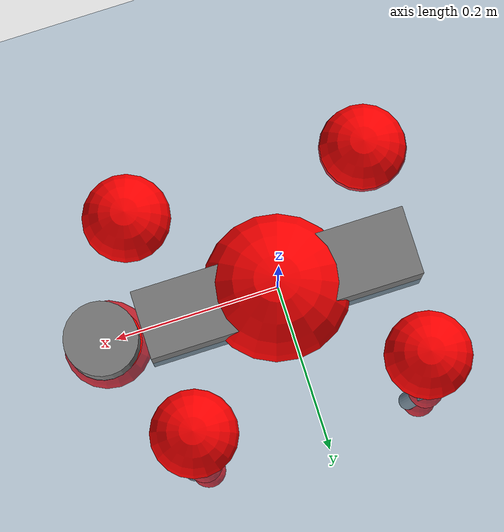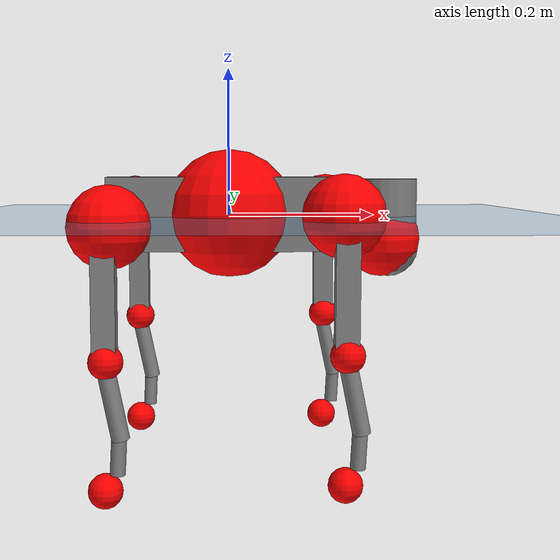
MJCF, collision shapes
<mujoco model="go2">
  <compiler angle="radian" assetdir="assets" balanceinertia="true" inertiafromgeom="false"/>

  <option timestep="0.005" density="1.2" viscosity="2e-05"/>

  <size nkey="1"/>

  <visual>
    <quality shadowsize="8192"/>
    <map shadowclip="0.5"/>
  </visual>

  <default>
    <default class="/">
      <geom contype="0" conaffinity="0" group="1" solref="-1000 -80"/>
      <site size="0.01 0.005 0.005" group="5"/>
      <general forcelimited="true" biastype="affine" gainprm="20" biasprm="0 -20 -0.5"/>
      <default class="go2">
        <joint armature="0.01" damping="0.01" frictionloss="0.2"/>
        <geom condim="1" margin="0.001"/>
        <default class="visual">
          <geom type="mesh" group="2"/>
        </default>
        <default class="collision">
          <geom group="3"/>
          <default class="foot">
            <geom size="0.022 0 0" condim="6" priority="1" friction="0.8 0.02 0.01" solimp="0.015 1 0.022"/>
          </default>
        </default>
        <default class="reward_collision_sphere">
          <geom group="5" rgba="1 0 0 1"/>
        </default>
      </default>
    </default>
  </default>

  <asset>
    <texture type="skybox" colorspace="auto" name="//unnamed_texture_0" builtin="gradient" rgb1="0.95 0.95 0.95" rgb2="0.95 0.95 0.95" width="100" height="600"/>
    <texture type="2d" colorspace="auto" name="texplane" builtin="checker" rgb1="0.345 0.575 0.748" rgb2="0.345 0.575 0.748" markrgb="1 1 1" width="512" height="512"/>
    <material name="MatPlane" class="/" texture="texplane" texuniform="true" texrepeat="2 2" specular="0.9"/>
    <material name="metal" class="/" rgba="0.9 0.95 0.95 1"/>
    <material name="black" class="/" rgba="0 0 0 1"/>
    <material name="white" class="/"/>
    <material name="gray" class="/" rgba="0.671705 0.692426 0.77427 1"/>
    <mesh name="base_0" class="/" file="base_0.obj"/>
    <mesh name="base_1" class="/" file="base_1.obj"/>
    <mesh name="base_2" class="/" file="base_2.obj"/>
    <mesh name="base_3" class="/" file="base_3.obj"/>
    <mesh name="base_4" class="/" file="base_4.obj"/>
    <mesh name="hip_0" class="/" file="hip_0.obj"/>
    <mesh name="hip_1" class="/" file="hip_1.obj"/>
    <mesh name="thigh_0" class="/" file="thigh_0.obj"/>
    <mesh name="thigh_1" class="/" file="thigh_1.obj"/>
    <mesh name="thigh_mirror_0" class="/" file="thigh_mirror_0.obj"/>
    <mesh name="thigh_mirror_1" class="/" file="thigh_mirror_1.obj"/>
    <mesh name="calf_0" class="/" file="calf_0.obj"/>
    <mesh name="calf_1" class="/" file="calf_1.obj"/>
    <mesh name="calf_mirror_0" class="/" file="calf_mirror_0.obj"/>
    <mesh name="calf_mirror_1" class="/" file="calf_mirror_1.obj"/>
    <mesh name="foot" class="/" file="foot.obj"/>
  </asset>

  <worldbody>
    <geom name="floor" class="/" size="100 100 0.125" type="plane" group="0" material="MatPlane"/>
    <light name="toplight_shadow" class="/" pos="0 0 5" dir="0.0990148 0.0990148 -0.990148" type="directional" ambient="0.04 0.04 0.04" diffuse="0.55 0.55 0.55" specular="0.12 0.12 0.12"/>
    <light name="toplight_fill" class="/" pos="0 0 5" dir="0.0990148 0.0990148 -0.990148" type="directional" castshadow="false" ambient="0.04 0.04 0.04" diffuse="0.3 0.3 0.3" specular="0.08 0.08 0.08"/>
    <body name="trunk" childclass="go2" pos="0.00122966 -0.00066146 0.00242085" quat="1 -0.000687576 -9.44278e-05 -0.000372397">
      <inertial pos="0.0171712 -0.000329399 -0.00402457" quat="-0.00119041 0.709922 -0.00561029 0.704257" mass="4.55678" diaginertia="0.0247568 0.168099 0.0062974"/>
      <joint name="//unnamed_joint_0" type="free" armature="0" damping="0" frictionloss="0"/>
      <geom name="//unnamed_geom_1" class="visual" material="black" mesh="base_0"/>
      <geom name="//unnamed_geom_2" class="visual" material="black" mesh="base_1"/>
      <geom name="//unnamed_geom_3" class="visual" material="black" mesh="base_2"/>
      <geom name="//unnamed_geom_4" class="visual" material="white" mesh="base_3"/>
      <geom name="//unnamed_geom_5" class="visual" material="gray" mesh="base_4"/>
      <geom name="trunk_1" class="collision" size="0.166246 0.0413184 0.0503776" type="box"/>
      <geom name="trunk_2" class="collision" size="0.0441908 0.0397718" pos="0.214878 0 0.00769038" type="cylinder"/>
      <geom name="trunk_3" class="collision" size="0.0415394" pos="0.22091 0 -0.0461423"/>
      <geom name="//unnamed_geom_9" class="reward_collision_sphere" size="0.0883817"/>
      <geom name="//unnamed_geom_10" class="reward_collision_sphere" size="0.053029" pos="0.211108 0 -0.0346067"/>
      <site name="imu" pos="-0.00900055 0.00913926 0.0311646" size="0.00883817"/>
      <camera name="track" pos="0 -2.25691 0" quat="0.707107 0.707107 0 0" mode="trackcom"/>
      <camera name="ego_camera" pos="0.235235 0 0.0346067" quat="-0.5 -0.5 0.5 0.5"/>
      <body name="FL_hip" pos="0.145082 0.0562018 0.000546191" quat="1 -0.000125393 0.000147227 0.000140713">
        <inertial pos="-0.00300391 0.00132406 0.00270067" quat="0.493146 0.500368 0.499697 0.506697" mass="0.454297" diaginertia="0.000212071 0.00102968 0.000126331"/>
        <joint name="FL_hip_joint" pos="0 0 0" axis="0.999945 -0.0105326 0.000112214" range="-1.04187 1.09087" armature="0.00877329" damping="0.00490915" frictionloss="0.195738"/>
        <geom name="//unnamed_geom_11" class="visual" material="metal" mesh="hip_0"/>
        <geom name="//unnamed_geom_12" class="visual" material="gray" mesh="hip_1"/>
        <geom name="//unnamed_geom_13" class="collision" size="0.0406556 0.0176763" pos="0 0.0902764 0" quat="0.707107 0.707107 0 0" type="cylinder"/>
        <geom name="//unnamed_geom_14" class="reward_collision_sphere" size="0.053029" pos="0 0.0789918 0"/>
        <body name="FL_thigh" pos="-0.00014805 0.110445 -0.00192722" quat="1 0.000350797 -0.00020703 0.000246029">
          <inertial pos="-0.00449521 -0.0256716 -0.0247396" quat="0.827063 0.0793583 -0.00904752 0.556405" mass="0.826004" diaginertia="0.00150199 0.0108005 0.000238416"/>
          <joint name="FL_thigh_joint" pos="0 0 0" axis="0.00277775 0.999996 0.000747897" stiffness="0.0029617" range="-1.60888 3.49555" armature="0.00853552" damping="0.011373" frictionloss="0.175381"/>
          <geom name="//unnamed_geom_15" class="visual" material="metal" mesh="thigh_0"/>
          <geom name="//unnamed_geom_16" class="visual" material="gray" mesh="thigh_1"/>
          <geom name="//unnamed_geom_17" class="collision" size="0.0941265 0.0108268 0.0150249" pos="0 0 -0.0819025" quat="0.707107 0 0.707107 0" type="box"/>
          <body name="FL_calf" pos="0.000610591 -0.00141892 -0.164617" quat="1 -3.29819e-05 -8.3128e-05 -0.000119568">
            <inertial pos="0.00814788 0.00113276 -0.107041" quat="0.710498 0.00186898 -0.00605168 0.703671" mass="0.166021" diaginertia="0.000371873 0.00272222 1.45258e-05"/>
            <joint name="FL_calf_joint" pos="0 0 0" axis="-0.00150269 0.999999 0.000256073" range="-2.658 -0.800467" armature="0.00784363" damping="0" frictionloss="0.152427"/>
            <geom name="//unnamed_geom_18" class="visual" material="gray" mesh="calf_0"/>
            <geom name="//unnamed_geom_19" class="visual" material="black" mesh="calf_1"/>
            <geom name="FL_calf0" class="collision" size="0.0106058 0.053029" pos="0.00603166 0 -0.0461423" quat="0.994493 0 -0.104807 0" type="cylinder"/>
            <geom name="//unnamed_geom_21" class="collision" size="0.00972198 0.028724" pos="0.0150792 0 -0.113818" quat="0.999688 0 0.0249974 0" type="cylinder"/>
            <geom name="//unnamed_geom_22" class="visual" pos="0 0 -0.163805" quat="1 0 0 0" material="black" mesh="foot"/>
            <geom name="FL_foot" class="foot" size="0.01729" pos="-0.00150792 0 -0.163805"/>
            <geom name="//unnamed_geom_24" class="reward_collision_sphere" size="0.0220954"/>
            <geom name="//unnamed_geom_25" class="reward_collision_sphere" size="0.0220954" pos="-0.00150792 0 -0.163805"/>
            <site name="FL_foot" class="foot" pos="-0.00150792 0 -0.163805" size="0.00883817"/>
          </body>
        </body>
      </body>
      <body name="FR_hip" pos="0.144852 -0.0536331 0.00221968" quat="0.999999 -0.000339133 -0.00121701 0.000546788">
        <inertial pos="-0.00629756 -0.00221362 -0.00188545" quat="0.506275 0.495347 0.501036 0.497272" mass="0.437687" diaginertia="0.000213159 0.00106552 0.000127048"/>
        <joint name="FR_hip_joint" pos="0 0 0" axis="0.999954 0.00168803 -0.00940855" stiffness="0.0076929" range="-1.003 1.00596" armature="0.00983516" damping="0.00317458" frictionloss="0.18925"/>
        <geom name="//unnamed_geom_26" class="visual" pos="0 3.13109e-09 1.34299e-07" quat="4.63268e-05 1 0 0" material="metal" mesh="hip_0"/>
        <geom name="//unnamed_geom_27" class="visual" pos="0 5.07588e-09 -3.32173e-07" quat="4.63268e-05 1 0 0" material="gray" mesh="hip_1"/>
        <geom name="//unnamed_geom_28" class="collision" size="0.0406556 0.0176763" pos="0 -0.0902764 0" quat="0.707107 0.707107 0 0" type="cylinder"/>
        <geom name="//unnamed_geom_29" class="reward_collision_sphere" size="0.053029" pos="0 -0.0789918 0"/>
        <body name="FR_thigh" pos="0.0010777 -0.109427 -0.00438851" quat="0.999999 4.77626e-05 0.00121468 -0.000199253">
          <inertial pos="-0.00456574 0.0243311 -0.0282312" quat="0.548552 -0.0310295 0.0910201 0.830568" mass="0.794989" diaginertia="0.00143237 0.0106339 0.000242521"/>
          <joint name="FR_thigh_joint" pos="0 0 0" axis="-0.00162568 -0.999999 0.000539688" range="-3.49666 1.53136" armature="0.00761877" damping="0.0271996" frictionloss="0.175189"/>
          <geom name="//unnamed_geom_30" class="visual" material="metal" mesh="thigh_mirror_0"/>
          <geom name="//unnamed_geom_31" class="visual" material="gray" mesh="thigh_mirror_1"/>
          <geom name="//unnamed_geom_32" class="collision" size="0.0941265 0.0108268 0.0150249" pos="0 0 -0.0819025" quat="0.707107 0 0.707107 0" type="box"/>
          <body name="FR_calf" pos="0.00161742 0.00011889 -0.166103" quat="0.999999 0.00103364 0.000152777 0.000232076">
            <inertial pos="0.00219541 0.00203618 -0.108982" quat="0.711255 -0.00469149 0.011933 0.702817" mass="0.165923" diaginertia="0.000369364 0.00269792 1.42716e-05"/>
            <joint name="FR_calf_joint" pos="0 0 0" axis="2.66579e-05 -0.999974 0.00720552" range="0.851643 2.70805" armature="0.00916824" damping="0.00655333" frictionloss="0.156269"/>
            <geom name="//unnamed_geom_33" class="visual" material="gray" mesh="calf_mirror_0"/>
            <geom name="//unnamed_geom_34" class="visual" material="black" mesh="calf_mirror_1"/>
            <geom name="FR_calf0" class="collision" size="0.0114896 0.053029" pos="0.00753958 0 -0.0461423" quat="0.995004 0 -0.0998334 0" type="cylinder"/>
            <geom name="//unnamed_geom_36" class="collision" size="0.00972198 0.028724" pos="0.0150792 0 -0.113818" quat="0.999688 0 0.0249974 0" type="cylinder"/>
            <geom name="//unnamed_geom_37" class="visual" pos="0 0 -0.163805" quat="1 0 0 0" material="black" mesh="foot"/>
            <geom name="FR_foot" class="foot" size="0.0214756" pos="-0.00150792 0 -0.163805"/>
            <geom name="//unnamed_geom_39" class="reward_collision_sphere" size="0.0220954"/>
            <geom name="//unnamed_geom_40" class="reward_collision_sphere" size="0.0220954" pos="-0.00150792 0 -0.163805"/>
            <site name="FR_foot" class="foot" pos="-0.00150792 0 -0.163805" size="0.00883817"/>
          </body>
        </body>
      </body>
      <body name="RL_hip" pos="-0.146151 0.0512818 -0.00179583" quat="0.999999 0.000313566 -0.00127681 0.000142838">
        <inertial pos="0.00151214 0.0033269 0.00239437" quat="0.511216 0.488411 0.49458 0.505474" mass="0.451905" diaginertia="0.000204206 0.00110024 0.000125514"/>
        <joint name="RL_hip_joint" pos="0 0 0" axis="-0.999972 0.00511807 0.00547204" stiffness="0.00570475" range="-1.03265 1.0189" armature="0.00866881" damping="0.0112637" frictionloss="0.177846"/>
        <geom name="//unnamed_geom_41" class="visual" pos="1.31369e-10 0 2.57514e-08" quat="4.63268e-05 0 1 0" material="metal" mesh="hip_0"/>
        <geom name="//unnamed_geom_42" class="visual" pos="2.12966e-10 0 2.28379e-08" quat="4.63268e-05 0 1 0" material="gray" mesh="hip_1"/>
        <geom name="//unnamed_geom_43" class="collision" size="0.0406556 0.0176763" pos="0 0.0902764 0" quat="0.707107 0.707107 0 0" type="cylinder"/>
        <geom name="//unnamed_geom_44" class="reward_collision_sphere" size="0.053029" pos="0 0.0789918 0"/>
        <body name="RL_thigh" pos="0.00112315 0.108414 -0.00448016" quat="1 7.21099e-05 6.54619e-05 -0.000379906">
          <inertial pos="-0.005854 -0.0257906 -0.0223049" quat="0.829269 0.084408 -0.019449 0.552096" mass="0.763294" diaginertia="0.00135852 0.0104146 0.000229154"/>
          <joint name="RL_thigh_joint" pos="0 0 0" axis="-0.00135435 0.999845 0.0175543" stiffness="0.00819504" range="-0.55115 4.53279" armature="0.00849681" damping="0.0281883" frictionloss="0.198669"/>
          <geom name="//unnamed_geom_45" class="visual" material="metal" mesh="thigh_0"/>
          <geom name="//unnamed_geom_46" class="visual" material="gray" mesh="thigh_1"/>
          <geom name="//unnamed_geom_47" class="collision" size="0.0941265 0.0108268 0.0150249" pos="0 0 -0.0819025" quat="0.707107 0 0.707107 0" type="box"/>
          <body name="RL_calf" pos="0.000341657 0.000384719 -0.162827" quat="1 -9.18671e-05 2.22733e-05 -4.75971e-07">
            <inertial pos="0.0068824 0.000349521 -0.105903" quat="0.713995 0.000879085 -0.00815338 0.700103" mass="0.164242" diaginertia="0.000360095 0.00257509 1.45857e-05"/>
            <joint name="RL_calf_joint" pos="0 0 0" axis="-0.00402677 0.999915 0.0124039" range="-2.69072 -0.768936" armature="0.00821799" damping="0.0210326" frictionloss="0.177023"/>
            <geom name="//unnamed_geom_48" class="visual" material="gray" mesh="calf_0"/>
            <geom name="//unnamed_geom_49" class="visual" material="black" mesh="calf_1"/>
            <geom name="RL_calf0" class="collision" size="0.0114896 0.053029" pos="0.00753958 0 -0.0461423" quat="0.995004 0 -0.0998334 0" type="cylinder"/>
            <geom name="//unnamed_geom_51" class="collision" size="0.00972198 0.028724" pos="0.0150792 0 -0.113818" quat="0.999688 0 0.0249974 0" type="cylinder"/>
            <geom name="//unnamed_geom_52" class="visual" pos="0 0 -0.163805" quat="1 0 0 0" material="black" mesh="foot"/>
            <geom name="RL_foot" class="foot" size="0.0212598" pos="-0.00150792 0 -0.163805"/>
            <geom name="//unnamed_geom_54" class="reward_collision_sphere" size="0.0220954"/>
            <geom name="//unnamed_geom_55" class="reward_collision_sphere" size="0.0220954" pos="-0.00150792 0 -0.163805"/>
            <site name="RL_foot" class="foot" pos="-0.00150792 0 -0.163805" size="0.00883817"/>
          </body>
        </body>
      </body>
      <body name="RR_hip" pos="-0.14888 -0.0513035 -0.0111861" quat="1 -3.69881e-05 0.000797453 -0.000233126">
        <inertial pos="0.0039567 -0.00364805 0.00153463" quat="0.495171 0.502166 0.49655 0.506037" mass="0.47363" diaginertia="0.000204081 0.00104634 0.000128503"/>
        <joint name="RR_hip_joint" pos="0 0 0" axis="-0.999866 0.0161106 -0.00289408" range="-1.0945 1.05004" armature="0.00875162" damping="0.000228644" frictionloss="0.148846"/>
        <geom name="//unnamed_geom_56" class="visual" pos="-1.18404e-10 3.13109e-09 -1.08548e-07" quat="2.14617e-09 4.63268e-05 4.63268e-05 -1" material="metal" mesh="hip_0"/>
        <geom name="//unnamed_geom_57" class="visual" pos="-2.45034e-10 5.07588e-09 3.55011e-07" quat="2.14617e-09 4.63268e-05 4.63268e-05 -1" material="gray" mesh="hip_1"/>
        <geom name="//unnamed_geom_58" class="collision" size="0.0406556 0.0176763" pos="0 -0.0902764 0" quat="0.707107 0.707107 0 0" type="cylinder"/>
        <geom name="//unnamed_geom_59" class="reward_collision_sphere" size="0.053029" pos="0 -0.0789918 0"/>
        <body name="RR_thigh" pos="-0.00289901 -0.106298 -0.00160076" quat="0.999999 -0.00132824 -9.42368e-05 -0.000207503">
          <inertial pos="-0.00202416 0.0228171 -0.0221422" quat="0.550071 -0.0261353 0.0862428 0.830242" mass="0.796835" diaginertia="0.00139088 0.0104482 0.000235325"/>
          <joint name="RR_thigh_joint" pos="0 0 0" axis="-0.0166051 -0.999856 -0.00335785" stiffness="3.29282e-05" range="-4.54625 0.515961" armature="0.00843135" damping="0" frictionloss="0.154216"/>
          <geom name="//unnamed_geom_60" class="visual" material="metal" mesh="thigh_mirror_0"/>
          <geom name="//unnamed_geom_61" class="visual" material="gray" mesh="thigh_mirror_1"/>
          <geom name="//unnamed_geom_62" class="collision" size="0.0941265 0.0108268 0.0150249" pos="0 0 -0.0819025" quat="0.707107 0 0.707107 0" type="box"/>
          <body name="RR_calf" pos="0.000893166 -0.00030978 -0.163424" quat="0.999999 0.000603757 0.00149216 -0.000542307">
            <inertial pos="0.00710532 0.000217341 -0.107819" quat="0.702449 -0.00535328 0.00803363 0.711669" mass="0.165679" diaginertia="0.000362586 0.00280757 1.48912e-05"/>
            <joint name="RR_calf_joint" pos="0 0 0" axis="-0.0132251 -0.999912 -0.000791849" stiffness="0.00509404" range="0.822655 2.67271" armature="0.00848885" damping="0.0172962" frictionloss="0.153592"/>
            <geom name="//unnamed_geom_63" class="visual" material="gray" mesh="calf_mirror_0"/>
            <geom name="//unnamed_geom_64" class="visual" material="black" mesh="calf_mirror_1"/>
            <geom name="RR_calf0" class="collision" size="0.0114896 0.053029" pos="0.00753958 0 -0.0461423" quat="0.995004 0 -0.0998334 0" type="cylinder"/>
            <geom name="//unnamed_geom_66" class="collision" size="0.00972198 0.028724" pos="0.0150792 0 -0.113818" quat="0.999688 0 0.0249974 0" type="cylinder"/>
            <geom name="//unnamed_geom_67" class="visual" pos="0 0 -0.163805" quat="1 0 0 0" material="black" mesh="foot"/>
            <geom name="RR_foot" class="foot" size="0.0191699" pos="-0.00150792 0 -0.163805"/>
            <geom name="//unnamed_geom_69" class="reward_collision_sphere" size="0.0220954"/>
            <geom name="//unnamed_geom_70" class="reward_collision_sphere" size="0.0220954" pos="-0.00150792 0 -0.163805"/>
            <site name="RR_foot" class="foot" pos="-0.00150792 0 -0.163805" size="0.00883817"/>
          </body>
        </body>
      </body>
    </body>
  </worldbody>

  <contact>
    <pair class="/" geom1="floor" geom2="FL_foot" name="//unnamed_contact_0"/>
    <pair class="/" geom1="floor" geom2="FR_foot" name="//unnamed_contact_1"/>
    <pair class="/" geom1="floor" geom2="RL_foot" name="//unnamed_contact_2"/>
    <pair class="/" geom1="floor" geom2="RR_foot" name="//unnamed_contact_3"/>
  </contact>

  <actuator>
    <general name="FL_hip" class="/" joint="FL_hip_joint" forcerange="-21.6054 21.6054" gainprm="18.7794" biasprm="0 -18.7794 -0.410811"/>
    <general name="FL_thigh" class="/" joint="FL_thigh_joint" forcerange="-22.473 22.473" gainprm="18.7794" biasprm="0 -18.7794 -0.410811"/>
    <general name="FL_calf" class="/" joint="FL_calf_joint" forcerange="-43.0809 43.0809" gainprm="18.7794" biasprm="0 -18.7794 -0.410811"/>
    <general name="FR_hip" class="/" joint="FR_hip_joint" forcerange="-19.4705 19.4705" gainprm="18.7794" biasprm="0 -18.7794 -0.410811"/>
    <general name="FR_thigh" class="/" joint="FR_thigh_joint" forcerange="-22.521 22.521" gainprm="18.7794" biasprm="0 -18.7794 -0.410811"/>
    <general name="FR_calf" class="/" joint="FR_calf_joint" forcerange="-41.3622 41.3622" gainprm="18.7794" biasprm="0 -18.7794 -0.410811"/>
    <general name="RL_hip" class="/" joint="RL_hip_joint" forcerange="-21.4449 21.4449" gainprm="18.7794" biasprm="0 -18.7794 -0.410811"/>
    <general name="RL_thigh" class="/" joint="RL_thigh_joint" forcerange="-22.763 22.763" gainprm="18.7794" biasprm="0 -18.7794 -0.410811"/>
    <general name="RL_calf" class="/" joint="RL_calf_joint" forcerange="-38.5829 38.5829" gainprm="18.7794" biasprm="0 -18.7794 -0.410811"/>
    <general name="RR_hip" class="/" joint="RR_hip_joint" forcerange="-21.2353 21.2353" gainprm="18.7794" biasprm="0 -18.7794 -0.410811"/>
    <general name="RR_thigh" class="/" joint="RR_thigh_joint" forcerange="-18.8096 18.8096" gainprm="18.7794" biasprm="0 -18.7794 -0.410811"/>
    <general name="RR_calf" class="/" joint="RR_calf_joint" forcerange="-42.76 42.76" gainprm="18.7794" biasprm="0 -18.7794 -0.410811"/>
  </actuator>

  <sensor>
    <gyro site="imu" name="imu_angular_velocity"/>
    <velocimeter site="imu" name="imu_linear_velocity"/>
    <framelinvel objtype="site" objname="FL_foot" name="FL_foot_global_linear_velocity"/>
    <framelinvel objtype="site" objname="FR_foot" name="FR_foot_global_linear_velocity"/>
    <framelinvel objtype="site" objname="RL_foot" name="RL_foot_global_linear_velocity"/>
    <framelinvel objtype="site" objname="RR_foot" name="RR_foot_global_linear_velocity"/>
  </sensor>

  <keyframe>
    <key name="home" qpos="0 0 0.325 1 0 0 0 0.1 0.8 -1.5 -0.1 -0.8 1.5 -0.1 0.8 -1.5 0.1 -0.8 1.5"/>
  </keyframe>
</mujoco>
